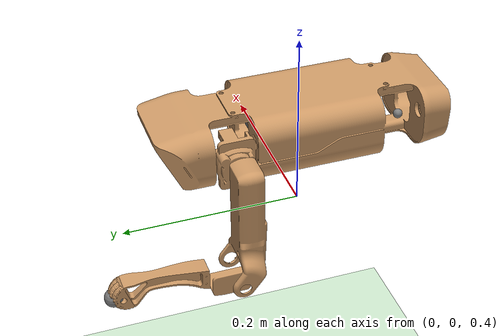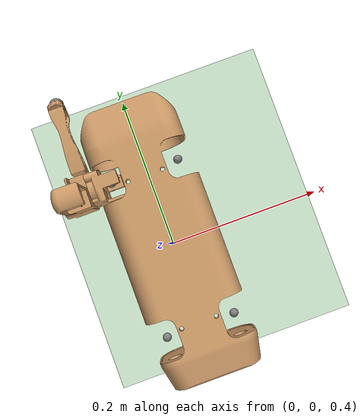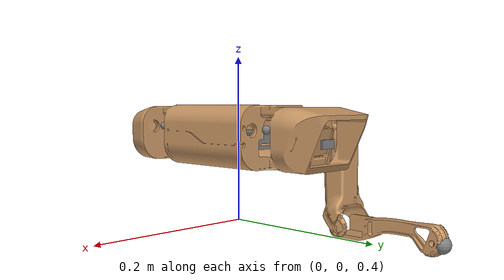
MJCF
<mujoco model="qrpfra">
    <include file="qrpfra_v3_leg_ik_left.xml"/>

    <default>
        <joint armature="1" damping="1" limited="true"/>
        <geom conaffinity="0" condim="3" density="1.0" friction="1 0.5 0.5" margin="0.01" rgba="0.8 0.6 0.4 1"/>
    </default>

    <asset>
        <texture builtin="gradient" height="100" rgb1="1 1 1" rgb2="0 0 0" type="skybox" width="100"/>
        <texture builtin="flat" height="1278" mark="cross" markrgb="1 1 1" name="texgeom" random="0.01" rgb1="0 0 0.4" rgb2="0.8 0.6 0.4" type="cube" width="127"/>
        <texture builtin="checker"  name="texplane" rgb1="0.02 0.02 0.12" rgb2="0.98 0.98 0.88" type="2d" width="100" height="100"/>
        <material name="MatPlane" reflectance="0.8" shininess="1" specular="1" texrepeat="60 60" texture="texplane"/>
    </asset>

    <worldbody>
        <light cutoff="100" diffuse="1 1 1" dir="-0 0 -1.3" directional="true" exponent="1" pos="0 0 1.3" specular=".1 .1 .1"/>
        <!--geom conaffinity="1" condim="3" friction="1 0.6 0.6" material="MatPlane" name="floor" pos="0 0 -0.05" rgba="0.8 0.9 0.8 1" size="50 50 0.05" type="box"/-->
        <geom conaffinity="1" condim="3" material="MatPlane" name="floor" pos="0 0 0" rgba="0.8 0.9 0.8 1" size="40 40 40" type="plane"/>
        <!--geom name="floor" size="0 0 0.05" type="plane" material="plane"/-->
    </worldbody>
</mujoco>

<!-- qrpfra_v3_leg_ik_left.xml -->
<mujoco model="qrpfra_v3_ik_model">
    <compiler angle="degree" coordinate="local"/>
    <option integrator="RK4" timestep="0.02" gravity="0 0 -9.81" density="1.24"/>

    <default>
        <joint armature="1" damping="1" limited="true"/>
        <geom conaffinity="0" condim="3" density="1.24" friction="1 0.5 0.5" margin="0.01" rgba="0.8 0.6 0.4 1"/>

        <default class="servo_motors">
            <position ctrllimited="true" ctrlrange="-100 100" gear="95"/>
        </default>

        <default class="joint_def">
            <joint pos="0 0 0" range="-60 60" type="hinge" damping="150"/>
        </default>

        <default class="Left_foot_Site">
            <site pos="-0.016 0.13 -0.005" type="sphere" size="0.01"/>
        </default>

        <default class="Right_foot_Site">
            <site pos="0.016 0.13 -0.005" type="sphere" size="0.01"/>
        </default>

    </default>

    <asset>
        <mesh name="main_body" file="/Users/deniz/PycharmProjects/QRPfRA_Senior_Project/QRPfRA/QRPfRA_body_m.stl"/>
        <mesh name="Left_Hind_Limb" file="/Users/deniz/PycharmProjects/QRPfRA_Senior_Project/QRPfRA/QRPfRA_left_hindlimb_m.stl"/>
        <mesh name="Left_MidLimb" file="/Users/deniz/PycharmProjects/QRPfRA_Senior_Project/QRPfRA/QRPfRA_left_midlimb_m.stl"/>
        <mesh name="Left_Wrist" file="/Users/deniz/PycharmProjects/QRPfRA_Senior_Project/QRPfRA/QRPfRA_left_wrist_m.stl"/>
        <mesh name="Right_Hind_Limb" file="/Users/deniz/PycharmProjects/QRPfRA_Senior_Project/QRPfRA/QRPfRA_right_hindlimb_m.stl"/>
        <mesh name="Right_MidLimb" file="/Users/deniz/PycharmProjects/QRPfRA_Senior_Project/QRPfRA/QRPfRA_right_midlimb_m.stl"/>
        <mesh name="Right_Wrist" file="/Users/deniz/PycharmProjects/QRPfRA_Senior_Project/QRPfRA/QRPfRA_right_wrist_m.stl"/>
    </asset>

    <worldbody>
        <body name="base_link" pos="0 0 0.5">
            <camera name="track" mode="trackcom" pos="0 -1 0.3" xyaxes="1 0 0 0 0 1"/>

            <geom type="mesh" mesh="main_body" mass="2" friction="0.3" density="2400" />
            <!--joint limited="true" margin="0.01" name="root" pos="0 0 0" type="free" stiffness="0" damping="0" frictionloss="0" armature="0"/-->

            <site name="base_link_Site" pos="0 0 0" type="box" size="0.03 0.05 0.01"/>

            <site name="head_rangefinder" pos="0 0.14 0" type="box" size="0.01 0.005 0.001" euler="-90 0 0"/>
            <site name="rear_rangefinder" pos="0 -0.155 0" type="box" size="0.01 0.005 0.001" euler="90 0 0"/>

            <site name="FL_Leg_ref" pos="-0.04 0.0875 0.015"/>
            <site name="RL_Leg_ref" pos="-0.04 -0.0975 0.015"/>
            <site name="FR_Leg_ref" pos="0.04 0.0875 0.015"/>
            <site name="RR_Leg_ref" pos="0.04 -0.0975 0.015"/>

            <body name="front_Left_Hind_Limb" pos="-0.04 0.065 0.013">
                <joint class="joint_def" axis="0 1 0" name="FL_hind_to_base"/>
                <geom type="mesh" mesh="Left_Hind_Limb" mass="0.150" density="2400"/>

                <body name="front_Left_MidLimb" pos="-0.025 0.023 -0.0105" euler="90 0 0">
                    <joint class="joint_def" axis="1 0 0" name="FL_mid_to_base"/>
                    <geom type="mesh" mesh="Left_MidLimb" mass="0.350" density="2400"/>

                    <body name="front_Left_Wrist" pos="-0.005 -0.107 -0.013" euler="-90 0 0">
                        <joint class="joint_def" axis="1 0 0" name="FL_wrist_to_mid" />
                        <geom type="mesh" mesh="Left_Wrist" mass="0.350" density="2400"/>

                        <site name="front_Left_Wrist_Site" class="Left_foot_Site"/>

                    </body>
                </body>
            </body>

        </body>

    </worldbody>

    <actuator>
        <position class="servo_motors" joint="FL_hind_to_base" name="FL_Hind2Base"/>
        <position class="servo_motors" joint="FL_mid_to_base" name="FL_Mid2Hind"/>
        <position class="servo_motors" joint="FL_wrist_to_mid" name="FL_Wrist2Mid"/>

    </actuator>

    <sensor>

        <framepos name="Left_Foot_pos" reftype="site" refname="FL_Leg_ref" objtype="site" objname="front_Left_Wrist_Site"/>

        <jointpos name="FL_Hind2Base_angle" joint="FL_hind_to_base"/>
        <jointpos name="FL_Mid2Hind_angle" joint="FL_mid_to_base"/>
        <jointpos name="FL_Wrist2Mid_angle" joint="FL_wrist_to_mid"/>

    </sensor>

</mujoco>
